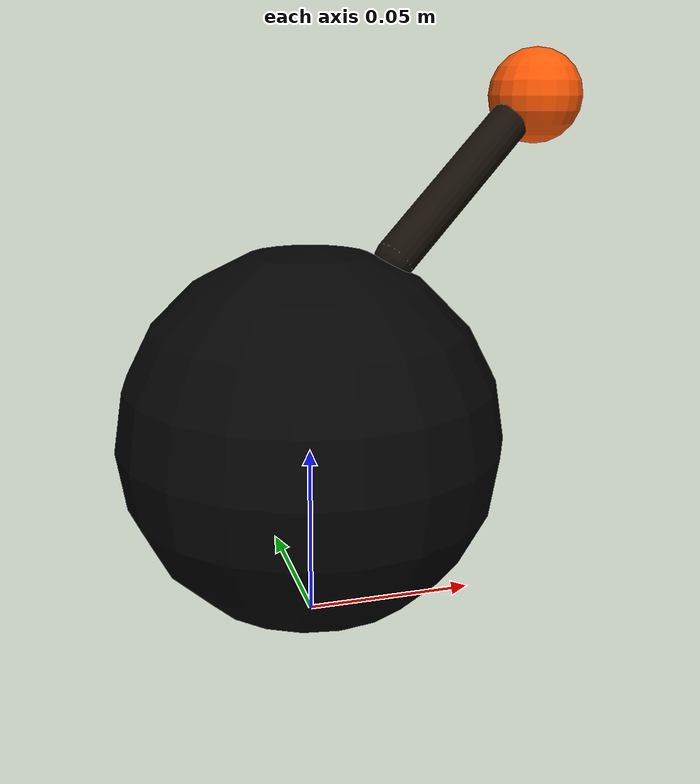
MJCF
<mujoco model="custom_obvious_cartoon_bomb">
  <worldbody>
    <body>
      <body name="object">
        <geom conaffinity="0" contype="0" group="1" pos="0 0 0.055" rgba="0.01 0.01 0.012 1" size="0.055" type="sphere" />
        <geom conaffinity="0" contype="0" group="1" fromto="0.025 0 0.105 0.068 0.015 0.145" rgba="0.08 0.055 0.025 1" size="0.006" type="capsule" />
        <geom conaffinity="0" contype="0" group="1" pos="0.074 0.017 0.149" rgba="1.0 0.35 0.02 1" size="0.014" type="sphere" />
        <geom conaffinity="0" contype="0" group="1" pos="0.074 0.017 0.149" rgba="1.0 0.95 0.15 1" size="0.007" type="sphere" />
        <geom density="100" friction="0.95 0.3 0.1" group="0" pos="0 0 0.055" rgba="0.8 0.8 0.8 0.0" size="0.060" type="sphere" />
        <geom
          name="reg_bbox"
          conaffinity="0"
          contype="0"
          group="3"
          pos="0.0000 0.0000 0.0800"
          rgba="0 0 0 0"
          size="0.0800 0.0700 0.0800"
          type="box"
        />
      </body>
      <site rgba="0 0 0 0" size="0.005" pos="0 0 0" name="bottom_site" />
      <site rgba="0 0 0 0" size="0.005" pos="0 0 0.1600" name="top_site" />
      <site rgba="0 0 0 0" size="0.005" pos="0.0800 0.0800 0" name="horizontal_radius_site" />
    </body>
  </worldbody>
</mujoco>
